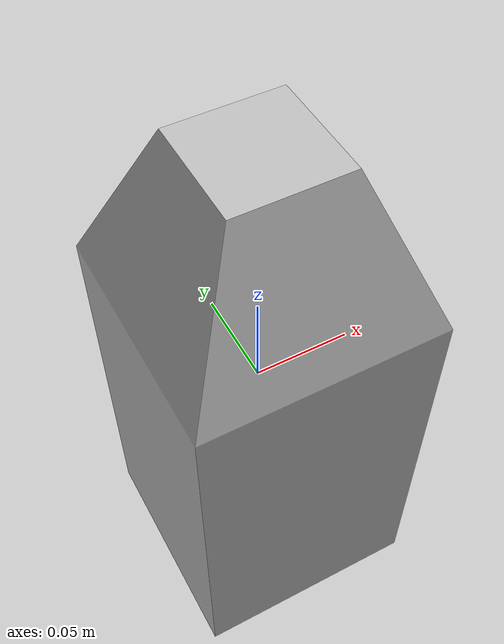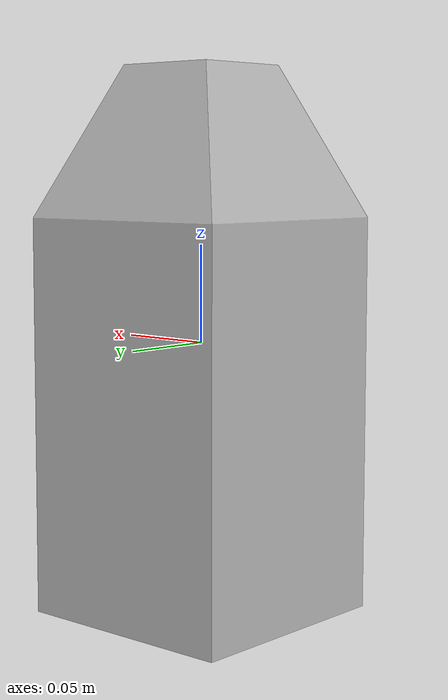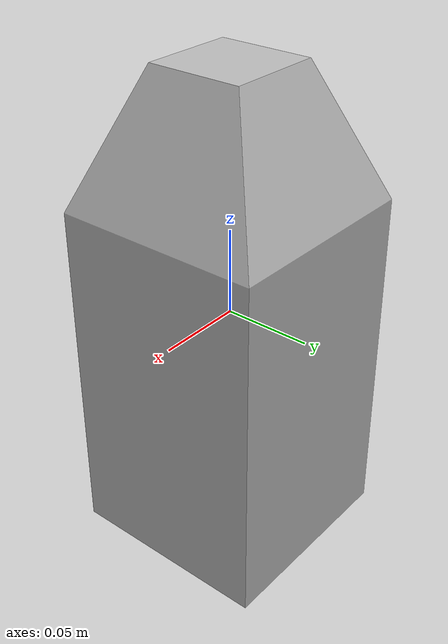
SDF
<?xml version="1.0" ?>
<sdf version="1.5">
  <model name="pilar_2">
    <link name="link">
      <collision name="collision">
        <geometry>
          <mesh>
            <scale>0.2 0.2 0.2</scale>
            <uri>model://pilar_2/meshes/pilar_2.stl</uri>
          </mesh>
        </geometry>
      </collision>
      <visual name="visual">
        <geometry>
          <mesh>
            <scale>0.2 0.2 0.2</scale>
            <uri>model://pilar_2/meshes/pilar_2.dae</uri>
          </mesh>
        </geometry>
      </visual>
    </link>
  </model>
</sdf>
